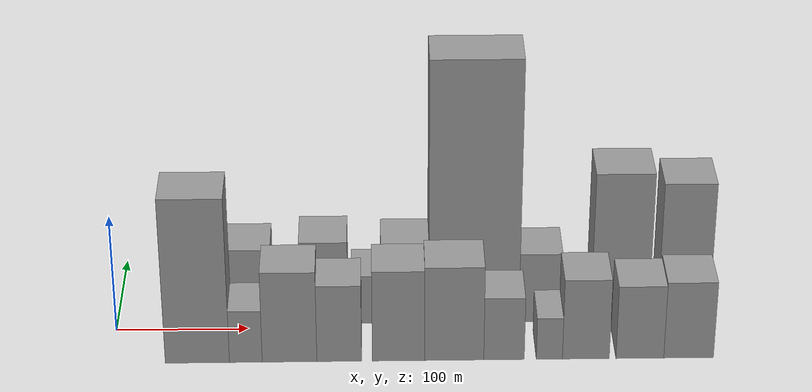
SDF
<sdf version="1.6">
 <world name="default">
  <scene>
   <sky><clouds><speed>12</speed></clouds></sky>
   <ambient>0.4 0.4 0.4 1</ambient>
   <background>0.7 0.7 0.7 1</background>
   <shadows>1</shadows>
  </scene>
  <gravity>0 0 -9.8066</gravity>
  <magnetic_field>6e-06 2.3e-05 -4.2e-05</magnetic_field>
  <physics default="0" name="default_physics" type="ode">
   <ode>
    <solver>
     <type>quick</type>
     <iters>10</iters>
     <sor>1.0</sor>
     <use_dynamic_moi_rescaling>0</use_dynamic_moi_rescaling>
    </solver>
    <constraints>
     <cfm>0</cfm>
     <erp>0.2</erp>
     <contact_max_correcting_vel>100</contact_max_correcting_vel>
     <contact_surface_layer>0.001</contact_surface_layer>
    </constraints>
   </ode>
   <max_step_size>0.004</max_step_size>
   <real_time_factor>1</real_time_factor>
   <real_time_update_rate>250</real_time_update_rate>
  </physics>
  <light name="sun" type="directional">
   <pose>0 0 10 0 0 0</pose>
   <diffuse>0.8 0.8 0.8 1</diffuse>
   <specular>0.2 0.2 0.2 1</specular>
   <attenuation>
    <range>1000</range>
    <constant>0.9</constant>
    <linear>0.01</linear>
    <quadratic>0.001</quadratic>
   </attenuation>
   <direction>-0.5 0.1 -0.9</direction>
  </light>
  <model name="building_1">
   <static>1</static>
   <pose>59.2588 26.0000 0 0.000000 0.000000 1.570796</pose>
   <link name="link">
    <pose>0 0 34.50 0 0 0</pose>
    <collision name="collision"><geometry><box><size>40.0000 38.5175 69.0000</size></box></geometry></collision>
    <visual name="visual">
     <cast_shadows>0</cast_shadows>
     <geometry><box><size>40.0000 38.5175 69.0000</size></box></geometry>
     <material>
      <script>
       <uri>model://grey_wall/materials/scripts</uri>
       <uri>model://grey_wall/materials/textures</uri>
       <name>vrc/grey_wall</name>
      </script>
     </material>
    </visual>
   </link>
  </model>
  <model name="building_2">
   <static>1</static>
   <pose>100.7636 26.0000 0 0.000000 0.000000 1.570796</pose>
   <link name="link">
    <pose>0 0 33.00 0 0 0</pose>
    <collision name="collision"><geometry><box><size>40.0000 34.4922 66.0000</size></box></geometry></collision>
    <visual name="visual">
     <cast_shadows>0</cast_shadows>
     <geometry><box><size>40.0000 34.4922 66.0000</size></box></geometry>
     <material>
      <script>
       <uri>model://grey_wall/materials/scripts</uri>
       <uri>model://grey_wall/materials/textures</uri>
       <name>vrc/grey_wall</name>
      </script>
     </material>
    </visual>
   </link>
  </model>
  <model name="building_3">
   <static>1</static>
   <pose>128.8021 26.0000 0 0.000000 0.000000 1.570796</pose>
   <link name="link">
    <pose>0 0 18.00 0 0 0</pose>
    <collision name="collision"><geometry><box><size>40.0000 21.5847 36.0000</size></box></geometry></collision>
    <visual name="visual">
     <cast_shadows>0</cast_shadows>
     <geometry><box><size>40.0000 21.5847 36.0000</size></box></geometry>
     <material>
      <script>
       <uri>model://grey_wall/materials/scripts</uri>
       <uri>model://grey_wall/materials/textures</uri>
       <name>vrc/grey_wall</name>
      </script>
     </material>
    </visual>
   </link>
  </model>
  <model name="building_4">
   <static>1</static>
   <pose>157.8917 26.0000 0 0.000000 0.000000 1.570796</pose>
   <link name="link">
    <pose>0 0 36.00 0 0 0</pose>
    <collision name="collision"><geometry><box><size>40.0000 36.5945 72.0000</size></box></geometry></collision>
    <visual name="visual">
     <cast_shadows>0</cast_shadows>
     <geometry><box><size>40.0000 36.5945 72.0000</size></box></geometry>
     <material>
      <script>
       <uri>model://grey_wall/materials/scripts</uri>
       <uri>model://grey_wall/materials/textures</uri>
       <name>vrc/grey_wall</name>
      </script>
     </material>
    </visual>
   </link>
  </model>
  <model name="building_5">
   <static>1</static>
   <pose>190.3808 26.0000 0 0.000000 0.000000 1.570796</pose>
   <link name="link">
    <pose>0 0 21.00 0 0 0</pose>
    <collision name="collision"><geometry><box><size>40.0000 22.3836 42.0000</size></box></geometry></collision>
    <visual name="visual">
     <cast_shadows>0</cast_shadows>
     <geometry><box><size>40.0000 22.3836 42.0000</size></box></geometry>
     <material>
      <script>
       <uri>model://grey_wall/materials/scripts</uri>
       <uri>model://grey_wall/materials/textures</uri>
       <name>vrc/grey_wall</name>
      </script>
     </material>
    </visual>
   </link>
  </model>
  <model name="building_6">
   <static>1</static>
   <pose>219.8024 26.0000 0 0.000000 0.000000 1.570796</pose>
   <link name="link">
    <pose>0 0 34.50 0 0 0</pose>
    <collision name="collision"><geometry><box><size>40.0000 36.4597 69.0000</size></box></geometry></collision>
    <visual name="visual">
     <cast_shadows>0</cast_shadows>
     <geometry><box><size>40.0000 36.4597 69.0000</size></box></geometry>
     <material>
      <script>
       <uri>model://grey_wall/materials/scripts</uri>
       <uri>model://grey_wall/materials/textures</uri>
       <name>vrc/grey_wall</name>
      </script>
     </material>
    </visual>
   </link>
  </model>
  <model name="building_7">
   <static>1</static>
   <pose>272.6233 26.0000 0 0.000000 0.000000 1.570796</pose>
   <link name="link">
    <pose>0 0 112.50 0 0 0</pose>
    <collision name="collision"><geometry><box><size>40.0000 69.1821 225.0000</size></box></geometry></collision>
    <visual name="visual">
     <cast_shadows>0</cast_shadows>
     <geometry><box><size>40.0000 69.1821 225.0000</size></box></geometry>
     <material>
      <script>
       <uri>model://grey_wall/materials/scripts</uri>
       <uri>model://grey_wall/materials/textures</uri>
       <name>vrc/grey_wall</name>
      </script>
     </material>
    </visual>
   </link>
  </model>
  <model name="building_8">
   <static>1</static>
   <pose>323.3936 26.0000 0 0.000000 0.000000 1.570796</pose>
   <link name="link">
    <pose>0 0 30.00 0 0 0</pose>
    <collision name="collision"><geometry><box><size>40.0000 32.3586 60.0000</size></box></geometry></collision>
    <visual name="visual">
     <cast_shadows>0</cast_shadows>
     <geometry><box><size>40.0000 32.3586 60.0000</size></box></geometry>
     <material>
      <script>
       <uri>model://grey_wall/materials/scripts</uri>
       <uri>model://grey_wall/materials/textures</uri>
       <name>vrc/grey_wall</name>
      </script>
     </material>
    </visual>
   </link>
  </model>
  <model name="building_9">
   <static>1</static>
   <pose>352.4111 26.0000 0 0.000000 0.000000 1.570796</pose>
   <link name="link">
    <pose>0 0 12.00 0 0 0</pose>
    <collision name="collision"><geometry><box><size>40.0000 11.6762 24.0000</size></box></geometry></collision>
    <visual name="visual">
     <cast_shadows>0</cast_shadows>
     <geometry><box><size>40.0000 11.6762 24.0000</size></box></geometry>
     <material>
      <script>
       <uri>model://grey_wall/materials/scripts</uri>
       <uri>model://grey_wall/materials/textures</uri>
       <name>vrc/grey_wall</name>
      </script>
     </material>
    </visual>
   </link>
  </model>
  <model name="building_10">
   <static>1</static>
   <pose>384.4233 26.0000 0 0.000000 0.000000 1.570796</pose>
   <link name="link">
    <pose>0 0 64.50 0 0 0</pose>
    <collision name="collision"><geometry><box><size>40.0000 44.3482 129.0000</size></box></geometry></collision>
    <visual name="visual">
     <cast_shadows>0</cast_shadows>
     <geometry><box><size>40.0000 44.3482 129.0000</size></box></geometry>
     <material>
      <script>
       <uri>model://grey_wall/materials/scripts</uri>
       <uri>model://grey_wall/materials/textures</uri>
       <name>vrc/grey_wall</name>
      </script>
     </material>
    </visual>
   </link>
  </model>
  <model name="building_11">
   <static>1</static>
   <pose>433.3507 26.0000 0 0.000000 0.000000 1.570796</pose>
   <link name="link">
    <pose>0 0 60.00 0 0 0</pose>
    <collision name="collision"><geometry><box><size>40.0000 39.5066 120.0000</size></box></geometry></collision>
    <visual name="visual">
     <cast_shadows>0</cast_shadows>
     <geometry><box><size>40.0000 39.5066 120.0000</size></box></geometry>
     <material>
      <script>
       <uri>model://grey_wall/materials/scripts</uri>
       <uri>model://grey_wall/materials/textures</uri>
       <name>vrc/grey_wall</name>
      </script>
     </material>
    </visual>
   </link>
  </model>
  <model name="building_12">
   <static>1</static>
   <pose>63.9239 -26.0000 0 0.000000 0.000000 1.570796</pose>
   <link name="link">
    <pose>0 0 70.50 0 0 0</pose>
    <collision name="collision"><geometry><box><size>40.0000 47.8479 141.0000</size></box></geometry></collision>
    <visual name="visual">
     <cast_shadows>0</cast_shadows>
     <geometry><box><size>40.0000 47.8479 141.0000</size></box></geometry>
     <material>
      <script>
       <uri>model://grey_wall/materials/scripts</uri>
       <uri>model://grey_wall/materials/textures</uri>
       <name>vrc/grey_wall</name>
      </script>
     </material>
    </visual>
   </link>
  </model>
  <model name="building_13">
   <static>1</static>
   <pose>100.0759 -26.0000 0 0.000000 0.000000 1.570796</pose>
   <link name="link">
    <pose>0 0 22.50 0 0 0</pose>
    <collision name="collision"><geometry><box><size>40.0000 24.4561 45.0000</size></box></geometry></collision>
    <visual name="visual">
     <cast_shadows>0</cast_shadows>
     <geometry><box><size>40.0000 24.4561 45.0000</size></box></geometry>
     <material>
      <script>
       <uri>model://grey_wall/materials/scripts</uri>
       <uri>model://grey_wall/materials/textures</uri>
       <name>vrc/grey_wall</name>
      </script>
     </material>
    </visual>
   </link>
  </model>
  <model name="building_14">
   <static>1</static>
   <pose>132.6970 -26.0000 0 0.000000 0.000000 1.570796</pose>
   <link name="link">
    <pose>0 0 39.00 0 0 0</pose>
    <collision name="collision"><geometry><box><size>40.0000 40.7861 78.0000</size></box></geometry></collision>
    <visual name="visual">
     <cast_shadows>0</cast_shadows>
     <geometry><box><size>40.0000 40.7861 78.0000</size></box></geometry>
     <material>
      <script>
       <uri>model://grey_wall/materials/scripts</uri>
       <uri>model://grey_wall/materials/textures</uri>
       <name>vrc/grey_wall</name>
      </script>
     </material>
    </visual>
   </link>
  </model>
  <model name="building_15">
   <static>1</static>
   <pose>169.8211 -26.0000 0 0.000000 0.000000 1.570796</pose>
   <link name="link">
    <pose>0 0 33.00 0 0 0</pose>
    <collision name="collision"><geometry><box><size>40.0000 33.4621 66.0000</size></box></geometry></collision>
    <visual name="visual">
     <cast_shadows>0</cast_shadows>
     <geometry><box><size>40.0000 33.4621 66.0000</size></box></geometry>
     <material>
      <script>
       <uri>model://grey_wall/materials/scripts</uri>
       <uri>model://grey_wall/materials/textures</uri>
       <name>vrc/grey_wall</name>
      </script>
     </material>
    </visual>
   </link>
  </model>
  <model name="building_16">
   <static>1</static>
   <pose>214.1197 -26.0000 0 0.000000 0.000000 1.570796</pose>
   <link name="link">
    <pose>0 0 39.00 0 0 0</pose>
    <collision name="collision"><geometry><box><size>40.0000 39.1350 78.0000</size></box></geometry></collision>
    <visual name="visual">
     <cast_shadows>0</cast_shadows>
     <geometry><box><size>40.0000 39.1350 78.0000</size></box></geometry>
     <material>
      <script>
       <uri>model://grey_wall/materials/scripts</uri>
       <uri>model://grey_wall/materials/textures</uri>
       <name>vrc/grey_wall</name>
      </script>
     </material>
    </visual>
   </link>
  </model>
  <model name="building_17">
   <static>1</static>
   <pose>255.8155 -26.0000 0 0.000000 0.000000 1.570796</pose>
   <link name="link">
    <pose>0 0 40.50 0 0 0</pose>
    <collision name="collision"><geometry><box><size>40.0000 44.2568 81.0000</size></box></geometry></collision>
    <visual name="visual">
     <cast_shadows>0</cast_shadows>
     <geometry><box><size>40.0000 44.2568 81.0000</size></box></geometry>
     <material>
      <script>
       <uri>model://grey_wall/materials/scripts</uri>
       <uri>model://grey_wall/materials/textures</uri>
       <name>vrc/grey_wall</name>
      </script>
     </material>
    </visual>
   </link>
  </model>
  <model name="building_18">
   <static>1</static>
   <pose>293.1013 -26.0000 0 0.000000 0.000000 1.570796</pose>
   <link name="link">
    <pose>0 0 27.00 0 0 0</pose>
    <collision name="collision"><geometry><box><size>40.0000 30.3147 54.0000</size></box></geometry></collision>
    <visual name="visual">
     <cast_shadows>0</cast_shadows>
     <geometry><box><size>40.0000 30.3147 54.0000</size></box></geometry>
     <material>
      <script>
       <uri>model://grey_wall/materials/scripts</uri>
       <uri>model://grey_wall/materials/textures</uri>
       <name>vrc/grey_wall</name>
      </script>
     </material>
    </visual>
   </link>
  </model>
  <model name="building_19">
   <static>1</static>
   <pose>327.0359 -26.0000 0 0.000000 0.000000 1.570796</pose>
   <link name="link">
    <pose>0 0 18.00 0 0 0</pose>
    <collision name="collision"><geometry><box><size>40.0000 19.5547 36.0000</size></box></geometry></collision>
    <visual name="visual">
     <cast_shadows>0</cast_shadows>
     <geometry><box><size>40.0000 19.5547 36.0000</size></box></geometry>
     <material>
      <script>
       <uri>model://grey_wall/materials/scripts</uri>
       <uri>model://grey_wall/materials/textures</uri>
       <name>vrc/grey_wall</name>
      </script>
     </material>
    </visual>
   </link>
  </model>
  <model name="building_20">
   <static>1</static>
   <pose>354.3844 -26.0000 0 0.000000 0.000000 1.570796</pose>
   <link name="link">
    <pose>0 0 34.50 0 0 0</pose>
    <collision name="collision"><geometry><box><size>40.0000 35.1423 69.0000</size></box></geometry></collision>
    <visual name="visual">
     <cast_shadows>0</cast_shadows>
     <geometry><box><size>40.0000 35.1423 69.0000</size></box></geometry>
     <material>
      <script>
       <uri>model://grey_wall/materials/scripts</uri>
       <uri>model://grey_wall/materials/textures</uri>
       <name>vrc/grey_wall</name>
      </script>
     </material>
    </visual>
   </link>
  </model>
  <model name="building_21">
   <static>1</static>
   <pose>394.9069 -26.0000 0 0.000000 0.000000 1.570796</pose>
   <link name="link">
    <pose>0 0 31.50 0 0 0</pose>
    <collision name="collision"><geometry><box><size>40.0000 35.9026 63.0000</size></box></geometry></collision>
    <visual name="visual">
     <cast_shadows>0</cast_shadows>
     <geometry><box><size>40.0000 35.9026 63.0000</size></box></geometry>
     <material>
      <script>
       <uri>model://grey_wall/materials/scripts</uri>
       <uri>model://grey_wall/materials/textures</uri>
       <name>vrc/grey_wall</name>
      </script>
     </material>
    </visual>
   </link>
  </model>
  <model name="building_22">
   <static>1</static>
   <pose>431.5037 -26.0000 0 0.000000 0.000000 1.570796</pose>
   <link name="link">
    <pose>0 0 33.00 0 0 0</pose>
    <collision name="collision"><geometry><box><size>40.0000 37.2909 66.0000</size></box></geometry></collision>
    <visual name="visual">
     <cast_shadows>0</cast_shadows>
     <geometry><box><size>40.0000 37.2909 66.0000</size></box></geometry>
     <material>
      <script>
       <uri>model://grey_wall/materials/scripts</uri>
       <uri>model://grey_wall/materials/textures</uri>
       <name>vrc/grey_wall</name>
      </script>
     </material>
    </visual>
   </link>
  </model>
 </world>
</sdf>
